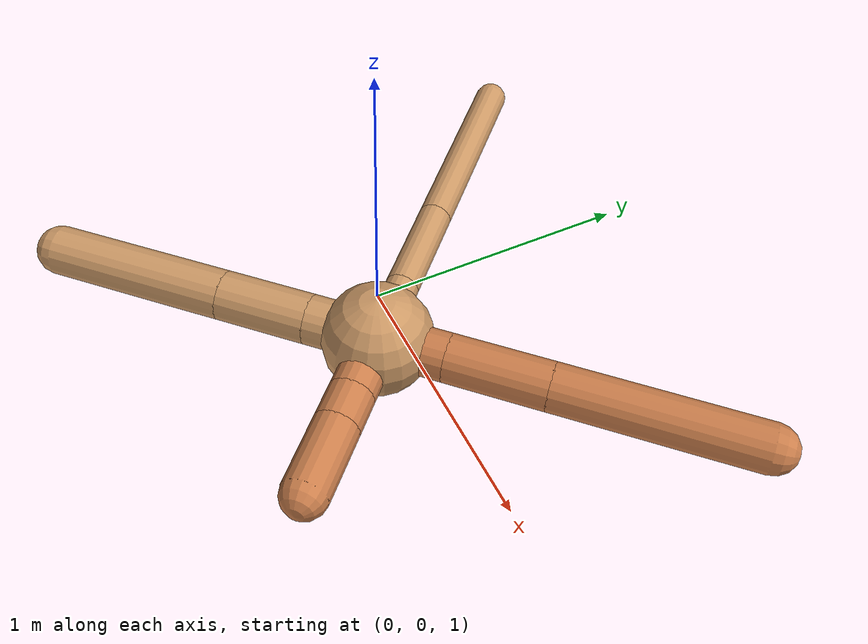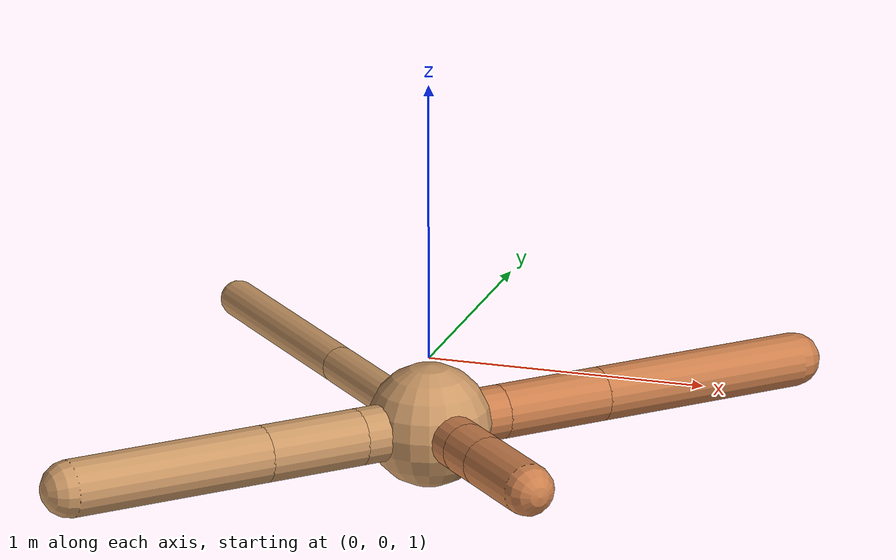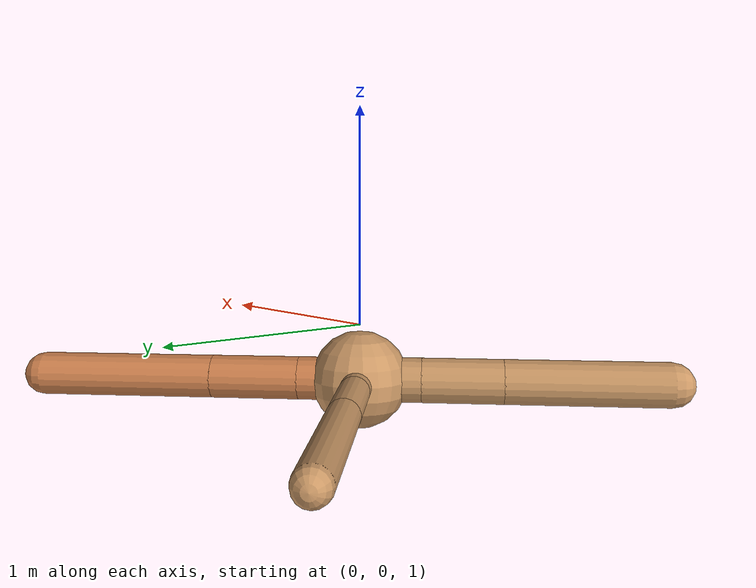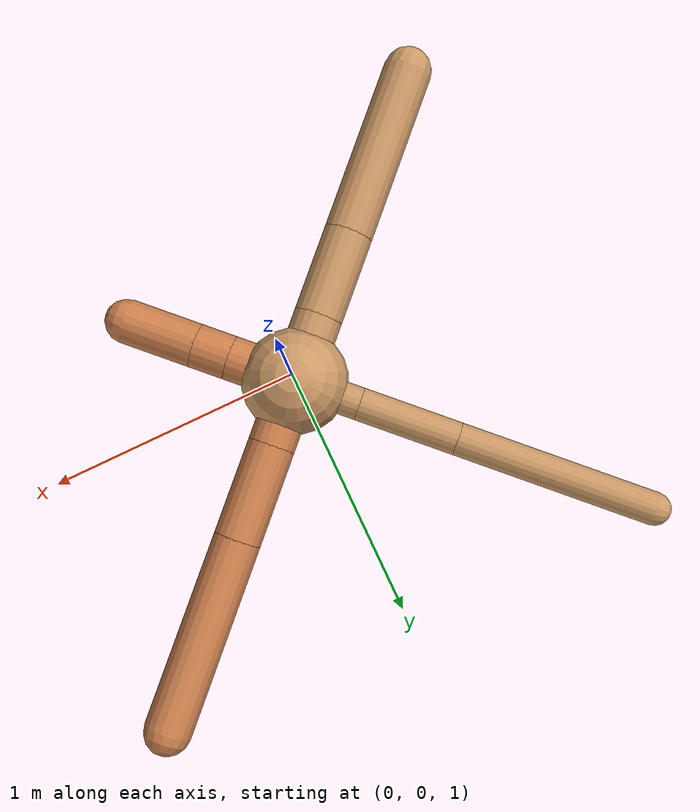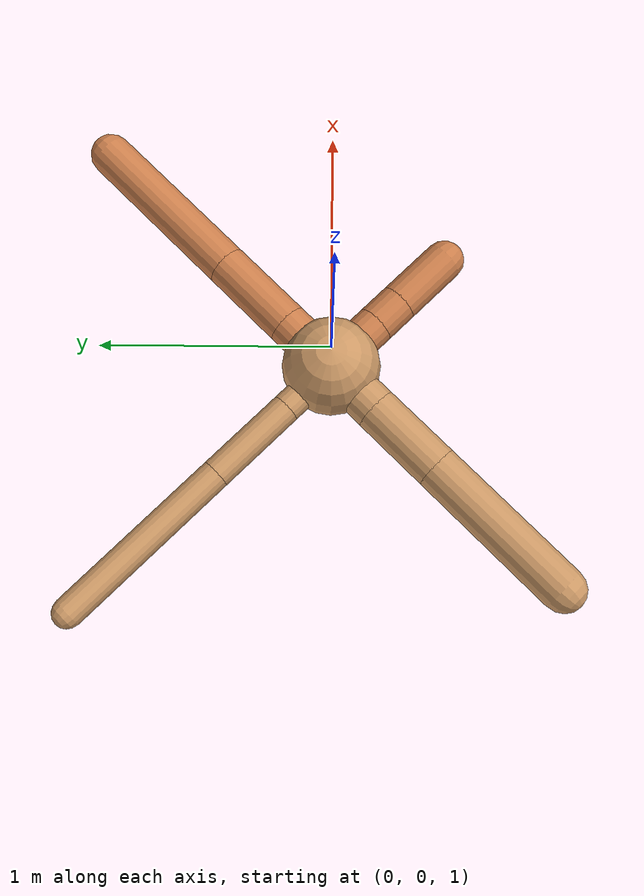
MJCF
<?xml version="1.0" ?>
<mujoco model="ant">

	<compiler angle="degree" coordinate="local" inertiafromgeom="true"/>

	<option integrator="RK4" timestep="0.01"/>

	<custom>

		<numeric data="0.0 0.0 0.55 1.0 0.0 0.0 0.0 0.0 1.0 0.0 -1.0 0.0 -1.0 0.0 1.0" name="init_qpos"/>

	</custom>

	<default>

		<joint armature="1" damping="1" limited="true"/>

		<geom conaffinity="0" condim="3" density="5.0" friction="1.5 0.1 0.1" margin="0.01" rgba="0.8 0.6 0.4 1"/>

	</default>

	<worldbody>

		<body name="torso" pos="0 0 0.75">

			<geom name="torso_geom" pos="0 0 0" size="0.22239548945764248" type="sphere"/>

			<!--joint armature="0" damping="0" limited="false" margin="0.01" name="root" pos="0 0 0" type="free"/-->

			<body name="front_left_leg" pos="0 0 0">

				<geom fromto="0 0 0 0.2 0.2 0" name="aux_1_geom" size="0.0982027586986437" type="capsule" rgba=".8 .5 .3 1"/>

				<body name="aux_1" pos="0.2 0.2 0">

					<joint axis="0 0 1" name="hip_1" pos="0.0 0.0 0.0" range="-40 40" type="hinge"/>

					<geom fromto="0 0 0 0.2861980162306424 0.2861980162306424 0" name="left_leg_geom" size="0.0982027586986437" type="capsule" rgba=".8 .5 .3 1"/>

					<body pos="0.2861980162306424 0.2861980162306424 0" name="front_left_foot">

						<joint axis="-1 1 0" name="ankle_1" pos="0.0 0.0 0.0" range="30 100" type="hinge"/>

						<geom fromto="0 0 0 0.5723960324612848 0.5723960324612848 0" name="left_ankle_geom" size="0.0982027586986437" type="capsule" rgba=".8 .5 .3 1"/>

					</body>

				</body>

			</body>

			<body name="front_right_leg" pos="0 0 0">

				<geom fromto="0 0 0 -0.2 0.2 0" name="aux_2_geom" size="0.06903781552297604" type="capsule"/>

				<body name="aux_2" pos="-0.2 0.2 0">

					<joint axis="0 0 1" name="hip_2" pos="0.0 0.0 0.0" range="-40 40" type="hinge"/>

					<geom fromto="0 0 0 -0.29981704056462705 0.29981704056462705 0" name="right_leg_geom" size="0.06903781552297604" type="capsule"/>

					<body pos="-0.29981704056462705 0.29981704056462705 0" name="front_right_foot">

						<joint axis="1 1 0" name="ankle_2" pos="0.0 0.0 0.0" range="-100 -30" type="hinge"/>

						<geom fromto="0 0 0 -0.5996340811292541 0.5996340811292541 0" name="right_ankle_geom" size="0.06903781552297604" type="capsule"/>

					</body>

				</body>

			</body>

			<body name="left_back_leg" pos="0 0 0">

				<geom fromto="0 0 0 -0.2 -0.2 0" name="aux_3_geom" size="0.10194438945122113" type="capsule"/>

				<body name="aux_3" pos="-0.2 -0.2 0">

					<joint axis="0 0 1" name="hip_3" pos="0.0 0.0 0.0" range="-40 40" type="hinge"/>

					<geom fromto="0 0 0 -0.26178501696519485 -0.26178501696519485 0" name="back_leg_geom" size="0.10194438945122113" type="capsule"/>

					<body pos="-0.26178501696519485 -0.26178501696519485 0" name="left_back_foot">

						<joint axis="-1 1 0" name="ankle_3" pos="0.0 0.0 0.0" range="-100 -30" type="hinge"/>

						<geom fromto="0 0 0 -0.5235700339303897 -0.5235700339303897 0" name="third_ankle_geom" size="0.10194438945122113" type="capsule"/>

					</body>

				</body>

			</body>

			<body name="right_back_leg" pos="0 0 0">

				<geom fromto="0 0 0 0.2 -0.2 0" name="aux_4_geom" size="0.0929698922016982" type="capsule" rgba=".8 .5 .3 1"/>

				<body name="aux_4" pos="0.2 -0.2 0">

					<joint axis="0 0 1" name="hip_4" pos="0.0 0.0 0.0" range="-40 40" type="hinge"/>

					<geom fromto="0 0 0 0.10672761336789534 -0.10672761336789534 0" name="rightback_leg_geom" size="0.0929698922016982" type="capsule" rgba=".8 .5 .3 1"/>

					<body pos="0.10672761336789534 -0.10672761336789534 0" name="right_back_foot">

						<joint axis="1 1 0" name="ankle_4" pos="0.0 0.0 0.0" range="30 100" type="hinge"/>

						<geom fromto="0 0 0 0.21345522673579068 -0.21345522673579068 0" name="fourth_ankle_geom" size="0.0929698922016982" type="capsule" rgba=".8 .5 .3 1"/>

					</body>

				</body>

			</body>

		</body>

	</worldbody>

	<actuator>

		<motor ctrllimited="true" ctrlrange="-1.0 1.0" joint="hip_4" gear="150"/>

		<motor ctrllimited="true" ctrlrange="-1.0 1.0" joint="ankle_4" gear="150"/>

		<motor ctrllimited="true" ctrlrange="-1.0 1.0" joint="hip_1" gear="150"/>

		<motor ctrllimited="true" ctrlrange="-1.0 1.0" joint="ankle_1" gear="150"/>

		<motor ctrllimited="true" ctrlrange="-1.0 1.0" joint="hip_2" gear="150"/>

		<motor ctrllimited="true" ctrlrange="-1.0 1.0" joint="ankle_2" gear="150"/>

		<motor ctrllimited="true" ctrlrange="-1.0 1.0" joint="hip_3" gear="150"/>

		<motor ctrllimited="true" ctrlrange="-1.0 1.0" joint="ankle_3" gear="150"/>

	</actuator>

</mujoco>
